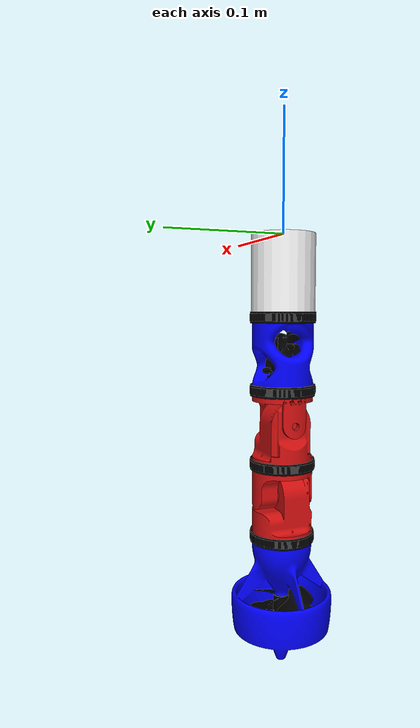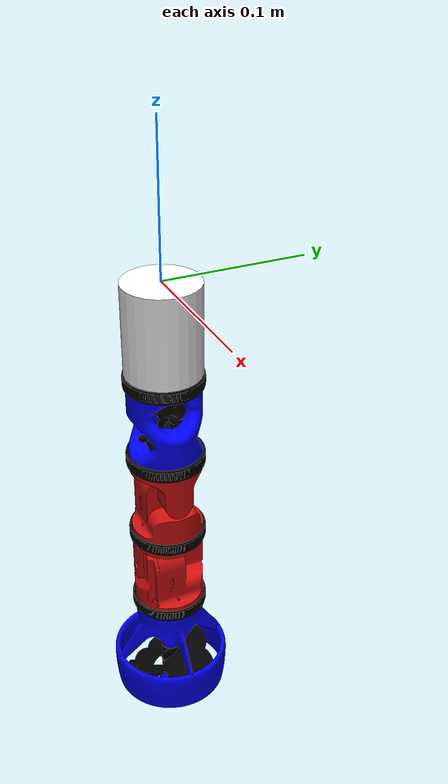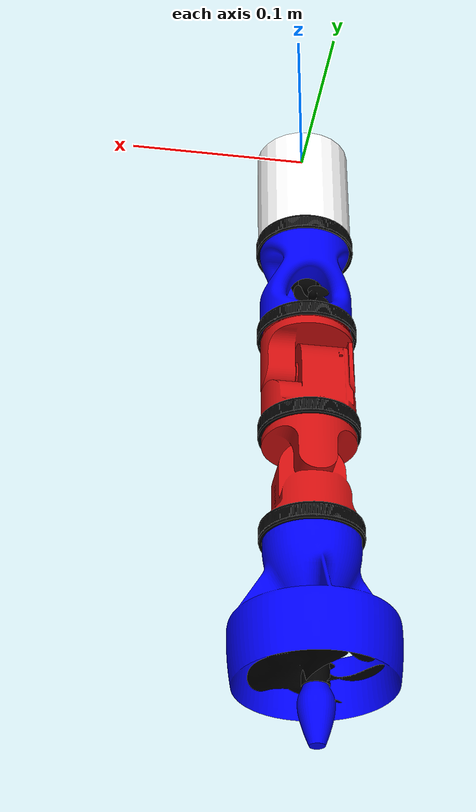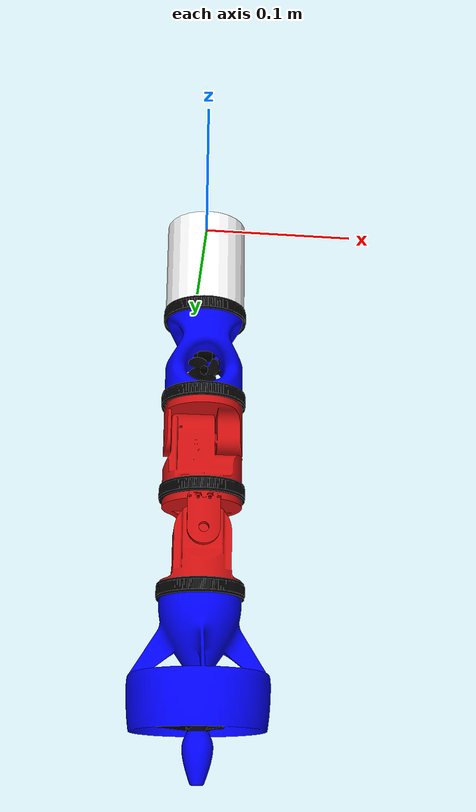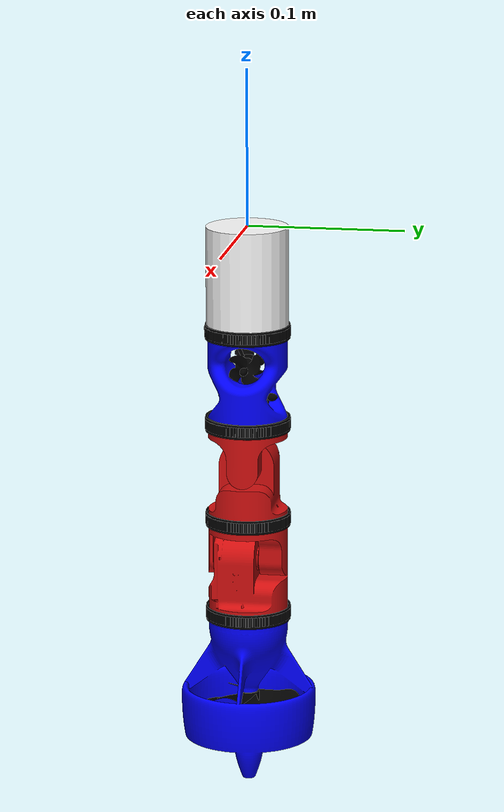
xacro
<?xml version="1.0"?>

<robot xmlns:xacro="http://www.ros.org/wiki/xacro" name="snake">
  <!-- load macros for modules -->
  <xacro:include filename="./module_common.xacro"/>
  <xacro:include filename="./rotary_module.xacro"/>
  <xacro:include filename="./buoyancy_module.xacro"/>
  <xacro:include filename="./radial_thruster.xacro"/>
  <xacro:include filename="./axial_thruster.xacro"/>
  <xacro:include filename="./head.xacro"/>

  <xacro:head_module module="head" child="radial1" output_offset="${PI/2}"/>
  <xacro:radial_thruster module="radial1" child="rotary1" output_offset="${-PI/2}"/>
  <xacro:rotary_module module="rotary1" child="rotary2" output_offset="${PI/2}"/>
  <xacro:rotary_module module="rotary2" child="axial" output_offset="0"/>
  <xacro:axial_thruster module="axial"/>
</robot>

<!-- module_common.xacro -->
<robot xmlns:xacro="http://www.ros.org/wiki/xacro">
  <!-- define macros for colors: -->
  <xacro:macro name="red_material">
    <material name="red">
      <color rgba=".82 0.06 0.06 1"/>
    </material>
  </xacro:macro>
  <xacro:macro name="white_material">
    <material name="white">
      <color rgba="1 1 1 1"/>
    </material>
  </xacro:macro>
  <xacro:macro name="gray_material">
    <material name="gray">
      <color rgba="0.6 0.6 0.6 1"/>
    </material>
  </xacro:macro>
  <xacro:macro name="blue_material">
    <material name="blue">
      <color rgba="0 0 1 1"/>
    </material>
  </xacro:macro>
  <xacro:macro name="silver_material">
    <material name="silver">
      <color rgba="0.6 0.6 0.6 1"/>
    </material>
  </xacro:macro>
  <xacro:macro name="black_material">
    <material name="black">
      <color rgba="0 0 0 1"/>
    </material>
  </xacro:macro>
  <xacro:property name="PI" value="3.1415926535897931" />
  <xacro:property name="input_mass" value=".1" />
</robot>

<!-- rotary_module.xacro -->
<robot xmlns:xacro="http://www.ros.org/wiki/xacro">
  <xacro:property name="rotary_mass_2" value=".335" />
  <xacro:property name="male_length_visual" value="0.037465" />
  <xacro:property name="male_r" value="0.0254" />
  <xacro:property name="input_to_joint" value="0.0273" />
  <xacro:property name="joint_to_output" value="0.0352988" />
  <xacro:property name="female_length" value="0.053107" />
  <xacro:property name="female_r" value="0.0257805" />
  <xacro:property name="male_length" value="${(input_to_joint - female_r) / 2.0}" />
  <xacro:property name="joint_to_female_center" value="0.0087453"/>

  <xacro:macro name="rotary_module_in" params="module">
    <link name="${module}__INPUT_INTERFACE">
      <visual>
        <origin xyz="0 0 ${-male_length_visual / 2.0}" rpy="0 ${-PI/2} 0" />
        <geometry>
          <mesh filename="package://humrs_robot_description/meshes/rotary_male.stl"/>
        </geometry>
        <xacro:red_material/>
      </visual>
    <collision>
      <origin xyz="0 0 ${-male_length / 2.0}" rpy="0 0 0" />
      <geometry>
        <cylinder radius="${male_r}" length="${male_length / 2.0}" />
      </geometry>
    </collision>
    <inertial>
      <origin xyz="0 0 ${-male_length / 2.0}" rpy="0 0 0" />
      <mass value="${rotary_mass_2}"/>
      <inertia ixx="${rotary_mass_2 / 12.0 * (3 * male_r**2 + male_length**2)}" iyy="${rotary_mass_2 / 12.0 * (3 * male_r**2 + male_length**2)}" izz="${rotary_mass_2 / 2.0 * male_r**2}" ixy="0" ixz="0" iyz="0" />
    </inertial>
    </link>
  </xacro:macro>

  <xacro:macro name="rotary_module_joint" params="module">
    <joint name="${module}__JOINT" type="revolute">
      <parent link="${module}__INPUT_INTERFACE"/>
      <child link="${module}__OUTPUT_BODY"/>
      <origin xyz="0 0 ${-input_to_joint}" rpy="0 0 0"/>
      <axis xyz="1 0 0"/>
      <dynamics damping=".1" friction="0.2"/>
      <limit effort="7.0" lower="-1.57" upper="1.57" velocity="2.208932"/>
    </joint>

    <transmission name="${module}_trans">
      <type>transmission_interface/SimpleTransmission</type>
      <joint name="${module}__JOINT">
        <hardwareInterface>PositionJointInterface</hardwareInterface>
      </joint>
      <actuator name="${module}__JOINT_motor">
        <hardwareInterface>PositionJointInterface</hardwareInterface>
        <mechanicalReduction>300</mechanicalReduction>
      </actuator>
    </transmission>

  </xacro:macro>

  <xacro:macro name="rotary_module_out" params="module">
    <link name="${module}__OUTPUT_BODY">
      <visual>
        <origin xyz="0 0 ${-joint_to_female_center}" rpy="0 0 0" />
        <geometry>
          <mesh filename="package://humrs_robot_description/meshes/rotary_female.stl"/>
        </geometry>
        <xacro:red_material/>
      </visual>
      <collision>
        <origin xyz="0 0 ${-joint_to_female_center}" rpy="0 0 0" />
        <geometry>
          <cylinder radius="${female_r}" length="${female_length}" />
        </geometry>
      </collision>
      <inertial>
        <origin xyz="0 0 ${-joint_to_female_center}" rpy="0 0 0" />
        <mass value="${rotary_mass_2}"/>
        <inertia ixx="${rotary_mass_2 / 12.0 * (3 * female_r**2 + female_length**2)}" iyy="${rotary_mass_2 / 12.0 * (3 * female_r**2 + female_length**2)}" izz="${rotary_mass_2 / 2.0 * female_r**2}" ixy="0" ixz="0" iyz="0" />
      </inertial>
    </link>
  </xacro:macro>

  <xacro:macro name="rotary_module_out_interface" params="module child offset">
    <joint name="${module}__OUTPUT_INTERFACE" type="fixed">
      <parent link="${module}__OUTPUT_BODY"/>
      <child link="${child}__INPUT_INTERFACE"/>
      <origin xyz="0 0 ${-joint_to_output}" rpy="0 0 ${offset}"/>
    </joint>
  </xacro:macro>

  <xacro:macro name="collar" params="module">
    <link name="${module}__COLLAR">
      <visual>
        <origin xyz="0 0 ${-joint_to_output}" rpy="0 ${PI/2} 0" />
        <geometry>
          <mesh filename="package://humrs_robot_description/meshes/collar.stl"/>
        </geometry>
        <xacro:black_material/>
      </visual>
    </link>
    <joint name="${module}__COLLAR_JOINT" type="fixed">
      <parent link="${module}__OUTPUT_BODY"/>
      <child link="${module}__COLLAR"/>
    </joint>
  </xacro:macro>

  <xacro:macro name="rotary_module" params="module child output_offset">
    <xacro:rotary_module_in module="${module}"/>
    <xacro:rotary_module_joint module="${module}" />
    <xacro:rotary_module_out module="${module}" />
    <xacro:rotary_module_out_interface module="${module}" child="${child}" offset="${output_offset}"/>
    <xacro:collar module="${module}"/>
  </xacro:macro>
</robot>

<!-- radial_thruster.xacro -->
<robot xmlns:xacro="http://www.ros.org/wiki/xacro">
  <xacro:property name="radial_mass" value=".67" />
  <xacro:property name="radial_length" value="0.0600703" />
  <xacro:property name="radial_radius" value="0.0253925" />
  <xacro:property name="input_to_propv" value="0.022426"/>
  <xacro:property name="input_to_proph" value="0.0432259"/>

  <xacro:macro name="radial_body" params="module">
    <link name="${module}__INPUT_INTERFACE">
      <visual>
        <origin xyz="0 0 ${-radial_length / 2.0}" rpy="${-PI/2} 0 0" />
        <geometry>
          <mesh filename="package://humrs_robot_description/meshes/radial_thruster_body.stl"/>
        </geometry>
        <xacro:blue_material/>
      </visual>
      <collision>
        <origin xyz="0 0 ${-radial_length / 2.0}" rpy="0 0 0" />
        <geometry>
          <cylinder radius="${radial_radius}" length="${radial_length}" />
        </geometry>
      </collision>
      <inertial>
        <origin xyz="0 0 ${-radial_length / 2.0}" rpy="0 0 0" />
        <mass value="${radial_mass}"/>
        <inertia ixx="${radial_mass / 12.0 * (3 * radial_radius**2 + radial_length**2)}" iyy="${radial_mass / 12.0 * (3 * radial_radius**2 + radial_length**2)}" izz="${radial_mass / 2.0 * radial_radius**2}" ixy="0" ixz="0" iyz="0" />
      </inertial>
    </link>
  </xacro:macro>

  <xacro:macro name="radial_collar" params="module">
    <link name="${module}__COLLAR">
      <visual>
        <geometry>
          <mesh filename="package://humrs_robot_description/meshes/collar.stl"/>
        </geometry>
        <xacro:black_material/>
      </visual>
    </link>
    <joint name="${module}__COLLAR_JOINT" type="fixed">
      <origin xyz="0 0 ${-radial_length}" rpy="0 ${-PI/2} 0" />
      <parent link="${module}__INPUT_INTERFACE"/>
      <child link="${module}__COLLAR"/>
    </joint>
  </xacro:macro>

  <xacro:macro name="radial_module_out_interface" params="module child offset">
    <joint name="${module}__OUTPUT_INTERFACE" type="fixed">
      <parent link="${module}__INPUT_INTERFACE"/>
      <child link="${child}__INPUT_INTERFACE"/>
      <origin xyz="0 0 ${-radial_length}" rpy="0 0 ${offset}"/>
    </joint>
  </xacro:macro>

  <xacro:macro name="vertical_propeller" params="module">
    <link name="${module}_propeller_v">
      <visual>
        <geometry>
          <mesh filename="package://humrs_robot_description/meshes/radial_propeller_v.stl"/>
        </geometry>
        <xacro:black_material/>
      </visual>
    </link>
    <joint name="${module}__PROPV_JOINT" type="continuous">
      <parent link="${module}__INPUT_INTERFACE"/>
      <child link="${module}_propeller_v"/>
      <origin xyz="0 0 ${-input_to_propv}" rpy="${PI/2} 0 0"/>
      <axis xyz="0 0 1"/>
      <dynamics damping=".1" friction="0.2"/>
      <limit effort="7.0" velocity="20"/>
    </joint>

    <transmission name="${module}__PROPV_JOINT_trans">
      <type>transmission_interface/SimpleTransmission</type>
      <joint name="${module}__PROPV_JOINT">
        <hardwareInterface>PositionJointInterface</hardwareInterface>
      </joint>
      <actuator name="${module}__PROPV_JOINT_motor">
        <hardwareInterface>PositionJointInterface</hardwareInterface>
        <mechanicalReduction>1</mechanicalReduction>
      </actuator>
    </transmission>
  </xacro:macro>

  <xacro:macro name="horizontal_propeller" params="module">
    <link name="${module}_propeller_h">
      <visual>
        <geometry>
          <mesh filename="package://humrs_robot_description/meshes/radial_propeller_h.stl"/>
        </geometry>
        <xacro:black_material/>
      </visual>
    </link>
    <joint name="${module}__PROPH_JOINT" type="continuous">
      <parent link="${module}__INPUT_INTERFACE"/>
      <child link="${module}_propeller_h"/>
      <origin xyz="0 0 ${-input_to_proph}" rpy="0 ${PI/2} 0"/>
      <axis xyz="0 0 1"/>
      <dynamics damping=".1" friction="0.2"/>
      <limit effort="7.0" velocity="20"/>
    </joint>

    <transmission name="${module}__PROPH_JOINT_trans">
      <type>transmission_interface/SimpleTransmission</type>
      <joint name="${module}__PROPH_JOINT">
        <hardwareInterface>PositionJointInterface</hardwareInterface>
      </joint>
      <actuator name="${module}__PROPH_JOINT_motor">
        <hardwareInterface>PositionJointInterface</hardwareInterface>
        <mechanicalReduction>1</mechanicalReduction>
      </actuator>
    </transmission>
  </xacro:macro>

  <xacro:macro name="radial_thruster" params="module child output_offset">
    <xacro:radial_body module="${module}"/>
    <xacro:horizontal_propeller module="${module}"/>
    <xacro:vertical_propeller module="${module}"/>
    <xacro:radial_collar module="${module}"/>
    <xacro:radial_module_out_interface module="${module}" child="${child}" offset="${output_offset}"/>
  </xacro:macro>
</robot>

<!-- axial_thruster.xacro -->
<robot xmlns:xacro="http://www.ros.org/wiki/xacro">
  <xacro:property name="axial_mass" value=".67" />
  <xacro:property name="axial_length" value="0.1155103" />
  <xacro:property name="axial_radius" value="0.0432145" />
  <xacro:property name="input_to_prop" value="0.068235"/>

  <xacro:macro name="axial_body" params="module">
    <link name="${module}__INPUT_INTERFACE">
      <visual>
        <origin xyz="0 0 ${-axial_length / 2.0}" rpy="${-PI/2} 0 0" />
        <geometry>
          <mesh filename="package://humrs_robot_description/meshes/axial_thruster_body.stl"/>
        </geometry>
        <xacro:blue_material/>
      </visual>
      <collision>
        <origin xyz="0 0 ${-axial_length / 2.0}" rpy="0 0 0" />
        <geometry>
          <cylinder radius="${axial_radius}" length="${axial_length}" />
        </geometry>
      </collision>
      <inertial>
        <origin xyz="0 0 ${-axial_length / 2.0}" rpy="0 0 0" />
        <mass value="${axial_mass}"/>
        <inertia ixx="${axial_mass / 12.0 * (3 * axial_radius**2 + axial_length**2)}" iyy="${axial_mass / 12.0 * (3 * axial_radius**2 + axial_length**2)}" izz="${axial_mass / 2.0 * axial_radius**2}" ixy="0" ixz="0" iyz="0" />
      </inertial>
    </link>
  </xacro:macro>

  <xacro:macro name="axial_propeller" params="module">
    <link name="${module}_propeller">
      <visual>
        <origin xyz="0 0 0" rpy="0 ${PI/2} 0" />
        <geometry>
          <mesh filename="package://humrs_robot_description/meshes/axial_propeller.stl"/>
        </geometry>
        <xacro:black_material/>
      </visual>
    </link>
    <joint name="${module}__PROP_JOINT" type="continuous">
      <parent link="${module}__INPUT_INTERFACE"/>
      <child link="${module}_propeller"/>
      <origin xyz="0 0 ${-input_to_prop}" rpy="0 0 0"/>
      <axis xyz="0 0 1"/>
      <dynamics damping=".1" friction="0.2"/>
      <limit effort="7.0" velocity="20"/>
    </joint>

    <transmission name="${module}__PROP_JOINT_trans">
      <type>transmission_interface/SimpleTransmission</type>
      <joint name="${module}__PROP_JOINT">
        <hardwareInterface>PositionJointInterface</hardwareInterface>
      </joint>
      <actuator name="${module}__PROP_JOINT_motor">
        <hardwareInterface>PositionJointInterface</hardwareInterface>
        <mechanicalReduction>1</mechanicalReduction>
      </actuator>
    </transmission>
  </xacro:macro>

  <xacro:macro name="axial_thruster" params="module">
    <xacro:axial_body module="${module}"/>
    <xacro:axial_propeller module="${module}"/>
  </xacro:macro>
</robot>

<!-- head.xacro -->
<robot xmlns:xacro="http://www.ros.org/wiki/xacro">
  <xacro:property name="head_mass" value=".67" />
  <xacro:property name="head_length" value="0.067576" />
  <xacro:property name="head_radius" value="0.0263525" />

  <xacro:macro name="head" params="module">
    <link name="${module}">
      <visual>
        <origin xyz="0 0 ${-head_length / 2.0}" rpy="0 0 0" />
        <geometry>
          <cylinder radius="${head_radius}" length="${head_length}"/>
        </geometry>
        <xacro:white_material/>
      </visual>
      <collision>
        <origin xyz="0 0 ${-head_length / 2.0}" rpy="0 0 0" />
        <geometry>
          <cylinder radius="${head_radius}" length="${head_length}" />
        </geometry>
      </collision>
      <inertial>
        <origin xyz="0 0 ${-head_length / 2.0}" rpy="0 0 0" />
        <mass value="${head_mass}"/>
        <inertia ixx="${head_mass / 12.0 * (3 * head_radius**2 + head_length**2)}" iyy="${head_mass / 12.0 * (3 * head_radius**2 + head_length**2)}" izz="${head_mass / 2.0 * head_radius**2}" ixy="0" ixz="0" iyz="0" />
      </inertial>
    </link>
  </xacro:macro>

  <xacro:macro name="head_collar" params="module">
    <link name="${module}__COLLAR">
      <visual>
        <geometry>
          <mesh filename="package://humrs_robot_description/meshes/collar.stl"/>
        </geometry>
        <xacro:black_material/>
      </visual>
    </link>
    <joint name="${module}__COLLAR_JOINT" type="fixed">
      <origin xyz="0 0 ${-head_length}" rpy="0 ${-PI/2} 0" />
      <parent link="${module}"/>
      <child link="${module}__COLLAR"/>
    </joint>
  </xacro:macro>

  <xacro:macro name="head_out_interface" params="module child offset">
    <joint name="${module}__OUTPUT_INTERFACE" type="fixed">
      <parent link="${module}"/>
      <child link="${child}__INPUT_INTERFACE"/>
      <origin xyz="0 0 ${-head_length}" rpy="0 0 ${offset}"/>
    </joint>
  </xacro:macro>

  <xacro:macro name="head_module" params="module child output_offset">
    <xacro:head module="${module}"/>
    <xacro:head_out_interface module="${module}" child="${child}" offset="${output_offset}"/>
    <xacro:head_collar module="${module}"/>
  </xacro:macro>
</robot>
